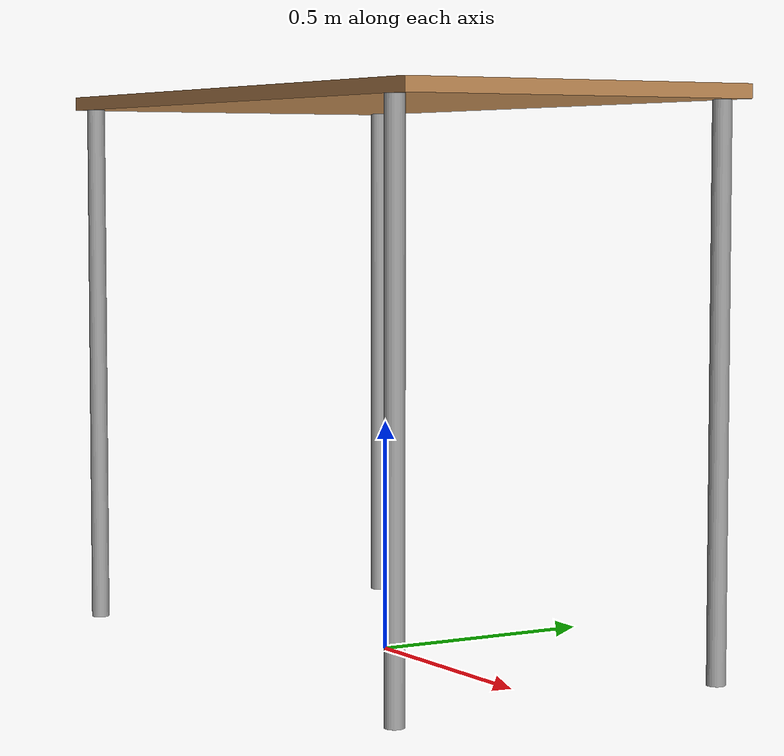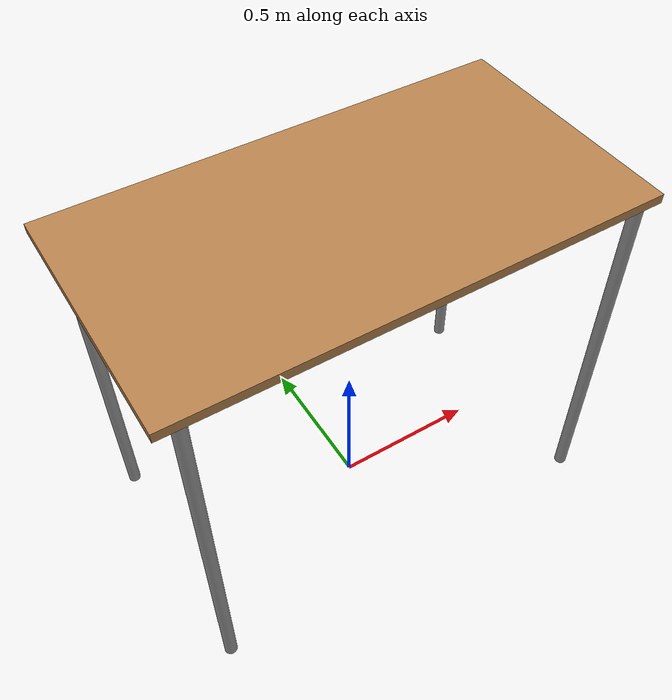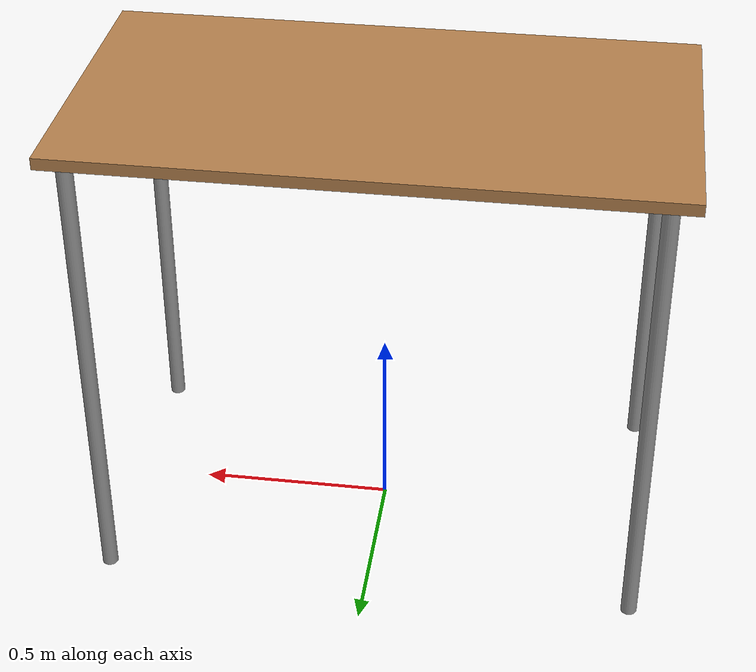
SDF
<?xml version="1.0" ?>
<sdf version="1.3">
  <model name="table">
    <static>true</static>
    <link name="link">
      <collision name="surface">
        <pose>0 0 1.2 0 0 0</pose>
        <geometry>
          <box>
            <size>1.5 0.8 0.03</size>
          </box>
        </geometry>
      </collision>
      <visual name="visual1">
        <pose>0 0 1.2 0 0 0</pose>
        <geometry>
          <box>
            <size>1.5 0.8 0.03</size>
          </box>
        </geometry>
        <material>
          <script>
            <uri>file://media/materials/scripts/gazebo.material</uri>
            <name>Gazebo/Wood</name>
          </script>
        </material>
      </visual>
      <collision name="front_left_leg_collision">
        <pose>0.68 0.38 0.6 0 0 0</pose>
        <geometry>
          <cylinder>
            <radius>0.02</radius>
            <length>1.2</length>
          </cylinder>
        </geometry>
      </collision>
      <visual name="front_left_leg">
        <pose>0.68 0.38 0.6 0 0 0</pose>
        <geometry>
          <cylinder>
            <radius>0.02</radius>
            <length>1.2</length>
          </cylinder>
        </geometry>
        <material>
          <script>
            <uri>file://media/materials/scripts/gazebo.material</uri>
            <name>Gazebo/Grey</name>
          </script>
        </material>
      </visual>
      <collision name="front_right_leg_collision">
        <pose>0.68 -0.38 0.6 0 0 0</pose>
        <geometry>
          <cylinder>
            <radius>0.02</radius>
            <length>1.2</length>
          </cylinder>
        </geometry>
      </collision>
      <visual name="front_right_leg">
        <pose>0.68 -0.38 0.6 0 0 0</pose>
        <geometry>
          <cylinder>
            <radius>0.02</radius>
            <length>1.2</length>
          </cylinder>
        </geometry>
        <material>
          <script>
            <uri>file://media/materials/scripts/gazebo.material</uri>
            <name>Gazebo/Grey</name>
          </script>
        </material>
      </visual>
      <collision name="back_right_leg_collision">
        <pose>-0.68 -0.38 0.6 0 0 0</pose>
        <geometry>
          <cylinder>
            <radius>0.02</radius>
            <length>1.2</length>
          </cylinder>
        </geometry>
      </collision>
      <visual name="back_right_leg">
        <pose>-0.68 -0.38 0.6 0 0 0</pose>
        <geometry>
          <cylinder>
            <radius>0.02</radius>
            <length>1.2</length>
          </cylinder>
        </geometry>
        <material>
          <script>
            <uri>file://media/materials/scripts/gazebo.material</uri>
            <name>Gazebo/Grey</name>
          </script>
        </material>
      </visual>
      <collision name="back_left_leg_collision">
        <pose>-0.68 0.38 0.6 0 0 0</pose>
        <geometry>
          <cylinder>
            <radius>0.02</radius>
            <length>1.2</length>
          </cylinder>
        </geometry>
      </collision>
      <visual name="back_left_leg">
        <pose>-0.68 0.38 0.6 0 0 0</pose>
        <geometry>
          <cylinder>
            <radius>0.02</radius>
            <length>1.2</length>
          </cylinder>
        </geometry>
        <material>
          <script>
            <uri>file://media/materials/scripts/gazebo.material</uri>
            <name>Gazebo/Grey</name>
          </script>
        </material>
      </visual>
    </link>
  </model>
</sdf>
